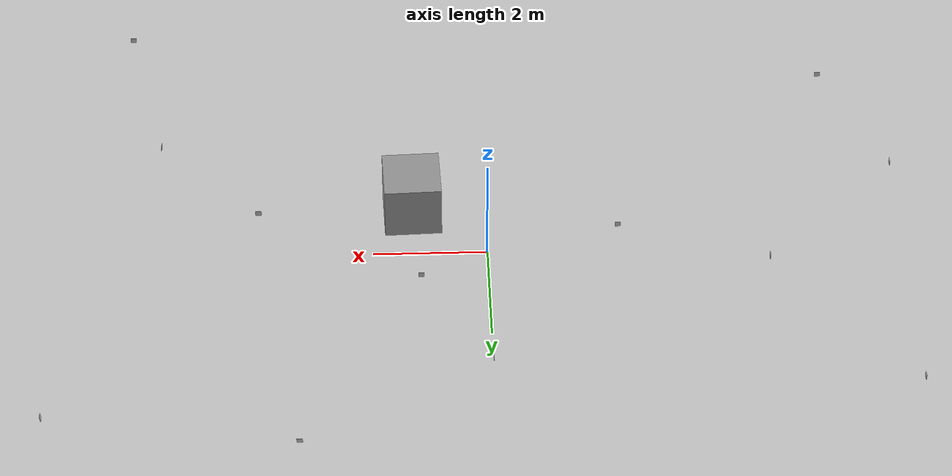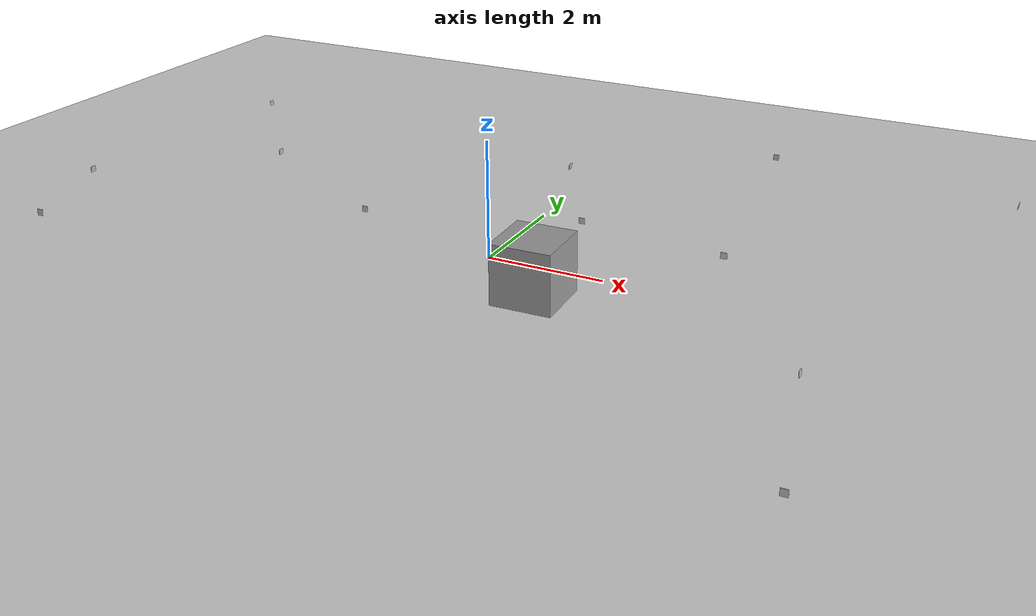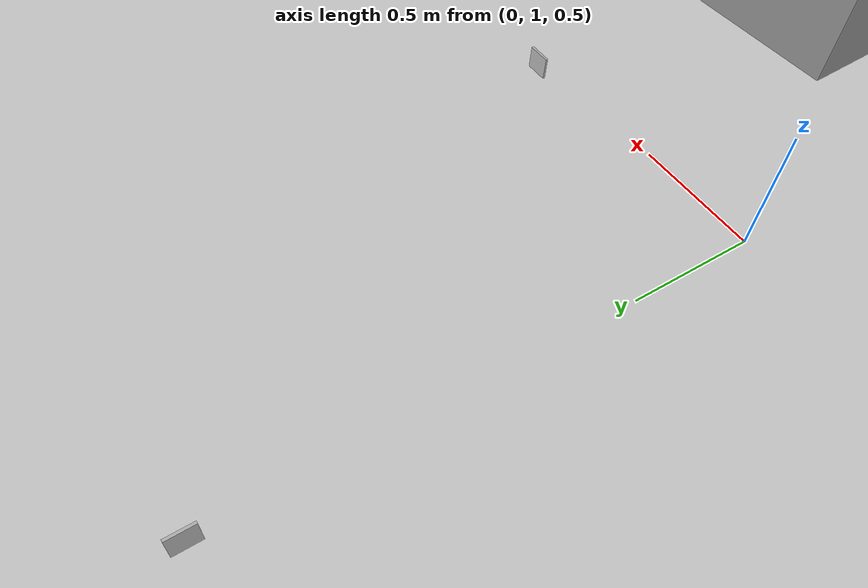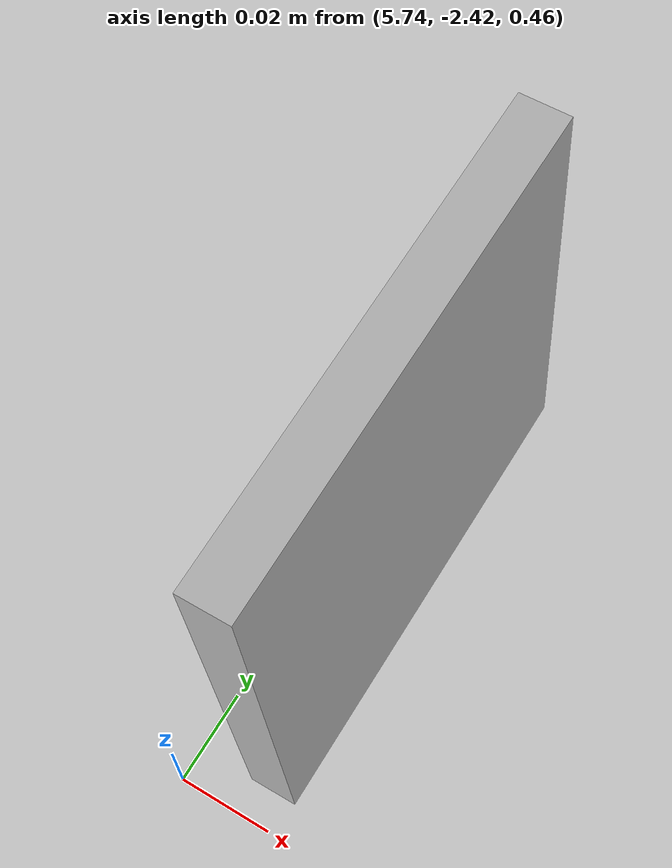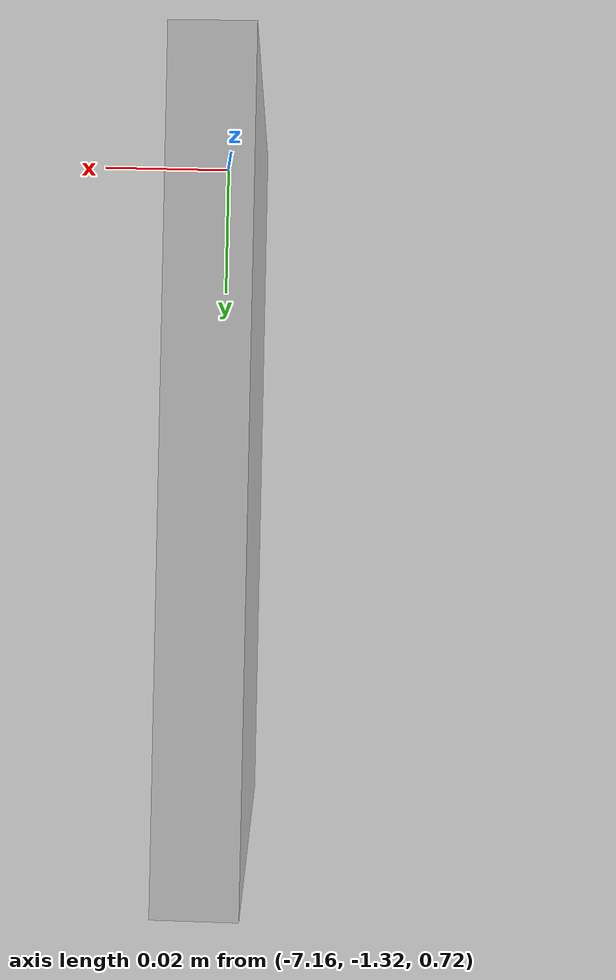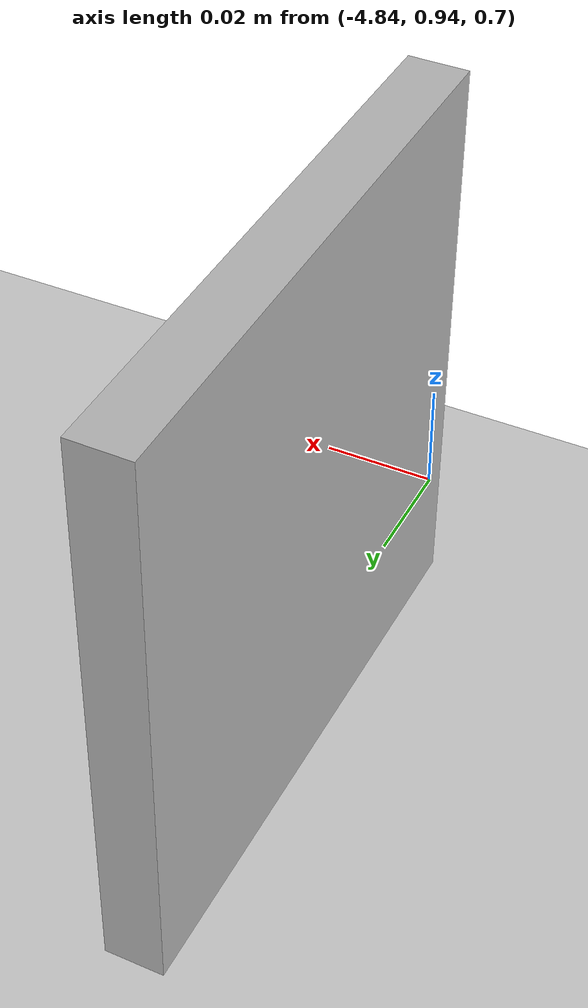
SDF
<sdf version="1.7">
 <world name="default">
  <light name="sun" type="directional">
   <pose>0 0 10 0 -0 0</pose>
   <diffuse>0.8 0.8 0.8 1</diffuse>
   <specular>0.2 0.2 0.2 1</specular>
   <attenuation>
    <range>1000</range>
    <constant>0.9</constant>
    <linear>0.01</linear>
    <quadratic>0.001</quadratic>
   </attenuation>
   <direction>-0.5 0.1 -0.9</direction>
   <spot><inner_angle>0</inner_angle><outer_angle>0</outer_angle><falloff>0</falloff></spot>
  </light>
  <model name="ground_plane">
   <static>1</static>
   <link name="link">
    <collision name="collision">
     <geometry><plane><normal>0 0 1</normal><size>100 100</size></plane></geometry>
     <surface>
      <contact><collide_bitmask>65535</collide_bitmask></contact>
      <friction><ode><mu>100</mu><mu2>50</mu2></ode></friction>
     </surface>
    </collision>
    <visual name="visual">
     <cast_shadows>0</cast_shadows>
     <geometry><plane><normal>0 0 1</normal><size>100 100</size></plane></geometry>
     <material>
      <script><uri>file://media/materials/scripts/gazebo.material</uri><name>Gazebo/Grey</name></script>
     </material>
    </visual>
   </link>
  </model>
  <physics type="ode">
   <real_time_update_rate>1000</real_time_update_rate>
   <max_step_size>0.001</max_step_size>
   <real_time_factor>1</real_time_factor>
   <ode>
    <solver>
     <type>quick</type>
     <iters>150</iters>
     <precon_iters>0</precon_iters>
     <sor>1.4</sor>
     <use_dynamic_moi_rescaling>1</use_dynamic_moi_rescaling>
    </solver>
    <constraints>
     <cfm>1e-05</cfm>
     <erp>0.2</erp>
     <contact_max_correcting_vel>2000</contact_max_correcting_vel>
     <contact_surface_layer>0.01</contact_surface_layer>
    </constraints>
   </ode>
  </physics>
  <scene><ambient>0.4 0.4 0.4 1</ambient><background>0.7 0.7 0.7 1</background><shadows>1</shadows></scene>
  <gravity>0 0 -9.8</gravity>
  <magnetic_field>6e-06 2.3e-05 -4.2e-05</magnetic_field>
  <atmosphere type="adiabatic"/>
  <spherical_coordinates>
   <surface_model>EARTH_WGS84</surface_model>
   <latitude_deg>0</latitude_deg>
   <longitude_deg>0</longitude_deg>
   <elevation>0</elevation>
   <heading_deg>0</heading_deg>
  </spherical_coordinates>
  <model name="Apriltag36_11_00000">
   <link name="main">
    <visual name="main_Visual">
     <geometry><box><size>0.1 0.1 0.01</size></box></geometry>
     <material>
      <script>
       <uri>model://Apriltag36_11_00000/materials/scripts</uri>
       <uri>model://Apriltag36_11_00000/materials/textures</uri>
       <name>Apriltag36_11_00000</name>
      </script>
     </material>
    </visual>
   </link>
   <static>1</static>
   <pose>-7.15815 -1.27083 0.778944 3.14159 1.51392 3.14159</pose>
  </model>
  <model name="Apriltag36_11_00001">
   <link name="main">
    <visual name="main_Visual">
     <geometry><box><size>0.1 0.1 0.01</size></box></geometry>
     <material>
      <script>
       <uri>model://Apriltag36_11_00001/materials/scripts</uri>
       <uri>model://Apriltag36_11_00001/materials/textures</uri>
       <name>Apriltag36_11_00001</name>
      </script>
     </material>
    </visual>
   </link>
   <static>1</static>
   <pose>-6.08651 -3.4485 0.956982 -1.69453 0 0</pose>
  </model>
  <model name="Apriltag36_11_00002">
   <link name="main">
    <visual name="main_Visual">
     <geometry><box><size>0.1 0.1 0.01</size></box></geometry>
     <material>
      <script>
       <uri>model://Apriltag36_11_00002/materials/scripts</uri>
       <uri>model://Apriltag36_11_00002/materials/textures</uri>
       <name>Apriltag36_11_00002</name>
      </script>
     </material>
    </visual>
   </link>
   <static>1</static>
   <pose>7.52945 4.36559 0.671179 0 -1.42093 0</pose>
  </model>
  <model name="Apriltag36_11_00003">
   <link name="main">
    <visual name="main_Visual">
     <geometry><box><size>0.1 0.1 0.01</size></box></geometry>
     <material>
      <script>
       <uri>model://Apriltag36_11_00003/materials/scripts</uri>
       <uri>model://Apriltag36_11_00003/materials/textures</uri>
       <name>Apriltag36_11_00003</name>
      </script>
     </material>
    </visual>
   </link>
   <static>1</static>
   <pose>3.25234 4.99013 0.632168 1.41705 -0 0</pose>
  </model>
  <model name="Apriltag36_11_00004">
   <link name="main">
    <visual name="main_Visual">
     <geometry><box><size>0.1 0.1 0.01</size></box></geometry>
     <material>
      <script>
       <uri>model://Apriltag36_11_00004/materials/scripts</uri>
       <uri>model://Apriltag36_11_00004/materials/textures</uri>
       <name>Apriltag36_11_00004</name>
      </script>
     </material>
    </visual>
   </link>
   <static>1</static>
   <pose>3.98072 -0.17215 0.901272 -1.53232 0 0</pose>
  </model>
  <model name="Apriltag36_11_00005">
   <link name="main">
    <visual name="main_Visual">
     <geometry><box><size>0.1 0.1 0.01</size></box></geometry>
     <material>
      <script>
       <uri>model://Apriltag36_11_00005/materials/scripts</uri>
       <uri>model://Apriltag36_11_00005/materials/textures</uri>
       <name>Apriltag36_11_00005</name>
      </script>
     </material>
    </visual>
   </link>
   <static>1</static>
   <pose>6.35142 -5.15685 0.652257 -1.58034 0 0</pose>
  </model>
  <model name="Apriltag36_11_00006">
   <link name="main">
    <visual name="main_Visual">
     <geometry><box><size>0.1 0.1 0.01</size></box></geometry>
     <material>
      <script>
       <uri>model://Apriltag36_11_00006/materials/scripts</uri>
       <uri>model://Apriltag36_11_00006/materials/textures</uri>
       <name>Apriltag36_11_00006</name>
      </script>
     </material>
    </visual>
   </link>
   <static>1</static>
   <pose>5.75476 -2.36375 0.515383 0 1.51517 0</pose>
  </model>
  <model name="Apriltag36_11_00007">
   <link name="main">
    <visual name="main_Visual">
     <geometry><box><size>0.1 0.1 0.01</size></box></geometry>
     <material>
      <script>
       <uri>model://Apriltag36_11_00007/materials/scripts</uri>
       <uri>model://Apriltag36_11_00007/materials/textures</uri>
       <name>Apriltag36_11_00007</name>
      </script>
     </material>
    </visual>
   </link>
   <static>1</static>
   <pose>1.17642 1.02029 0.48214 1.56556 -0 0</pose>
  </model>
  <model name="Apriltag36_11_00008">
   <link name="main">
    <visual name="main_Visual">
     <geometry><box><size>0.1 0.1 0.01</size></box></geometry>
     <material>
      <script>
       <uri>model://Apriltag36_11_00008/materials/scripts</uri>
       <uri>model://Apriltag36_11_00008/materials/textures</uri>
       <name>Apriltag36_11_00008</name>
      </script>
     </material>
    </visual>
   </link>
   <static>1</static>
   <pose>-2.28183 -0.130205 0.490248 -1.59756 0 0</pose>
  </model>
  <model name="Apriltag36_11_00009">
   <link name="main">
    <visual name="main_Visual">
     <geometry><box><size>0.1 0.1 0.01</size></box></geometry>
     <material>
      <script>
       <uri>model://Apriltag36_11_00009/materials/scripts</uri>
       <uri>model://Apriltag36_11_00009/materials/textures</uri>
       <name>Apriltag36_11_00009</name>
      </script>
     </material>
    </visual>
   </link>
   <static>1</static>
   <pose>-0.003084 3.09314 0.552698 0 -1.50724 0</pose>
  </model>
  <model name="Apriltag36_11_00010">
   <link name="main">
    <visual name="main_Visual">
     <geometry><box><size>0.1 0.1 0.01</size></box></geometry>
     <material>
      <script>
       <uri>model://Apriltag36_11_00010/materials/scripts</uri>
       <uri>model://Apriltag36_11_00010/materials/textures</uri>
       <name>Apriltag36_11_00010</name>
      </script>
     </material>
    </visual>
   </link>
   <static>1</static>
   <pose>-4.84095 1 0.740226 0 1.56242 0</pose>
  </model>
  <model name="Apriltag36_11_00011">
   <link name="main">
    <visual name="main_Visual">
     <geometry><box><size>0.1 0.1 0.01</size></box></geometry>
     <material>
      <script>
       <uri>model://Apriltag36_11_00011/materials/scripts</uri>
       <uri>model://Apriltag36_11_00011/materials/textures</uri>
       <name>Apriltag36_11_00011</name>
      </script>
     </material>
    </visual>
   </link>
   <static>1</static>
   <pose>-7.20915 3.79091 0.556381 1.56828 0.007898 1.61634</pose>
  </model>
  <model name="unit_box">
   <pose>1.30416 -1.00149 0.5 0 -0 0.033293</pose>
   <link name="link">
    <inertial>
     <mass>1</mass>
     <inertia>
      <ixx>0.166667</ixx>
      <ixy>0</ixy>
      <ixz>0</ixz>
      <iyy>0.166667</iyy>
      <iyz>0</iyz>
      <izz>0.166667</izz>
     </inertia>
    </inertial>
    <collision name="collision"><geometry><box><size>1 1 1</size></box></geometry></collision>
    <visual name="visual">
     <geometry><box><size>1 1 1</size></box></geometry>
     <material>
      <script><name>Gazebo/Grey</name><uri>file://media/materials/scripts/gazebo.material</uri></script>
     </material>
    </visual>
   </link>
  </model>
 </world>
</sdf>
